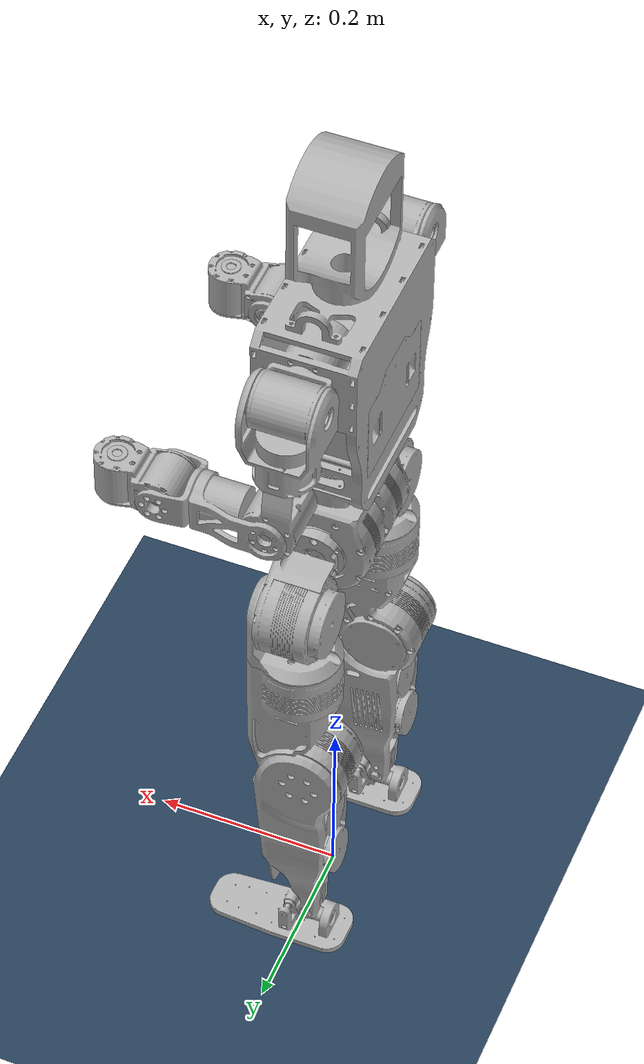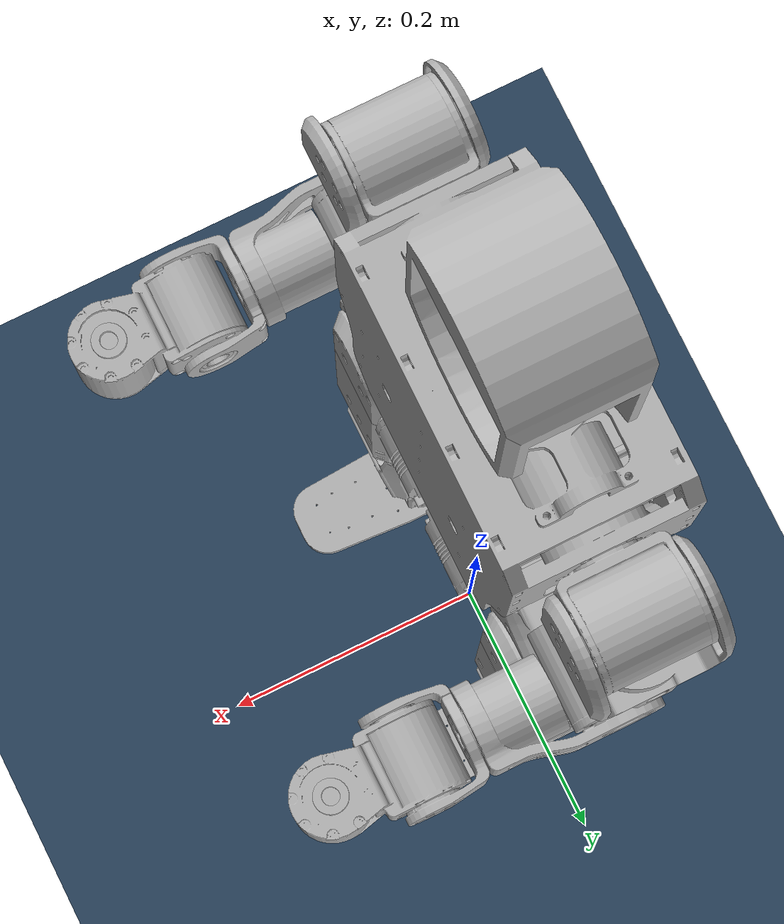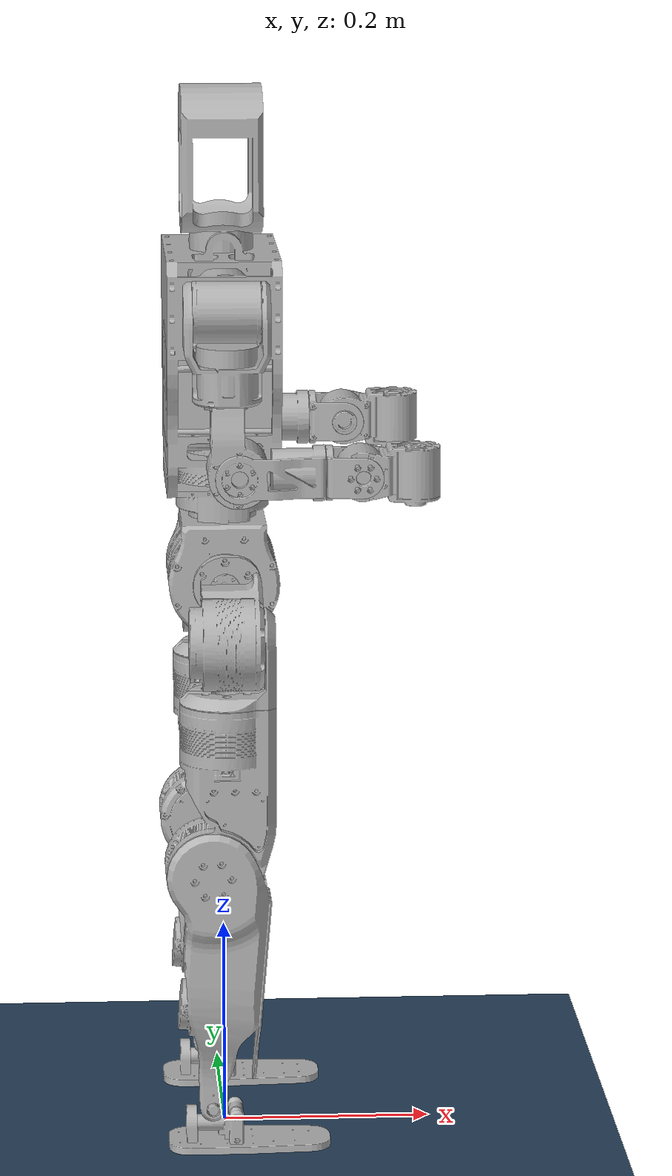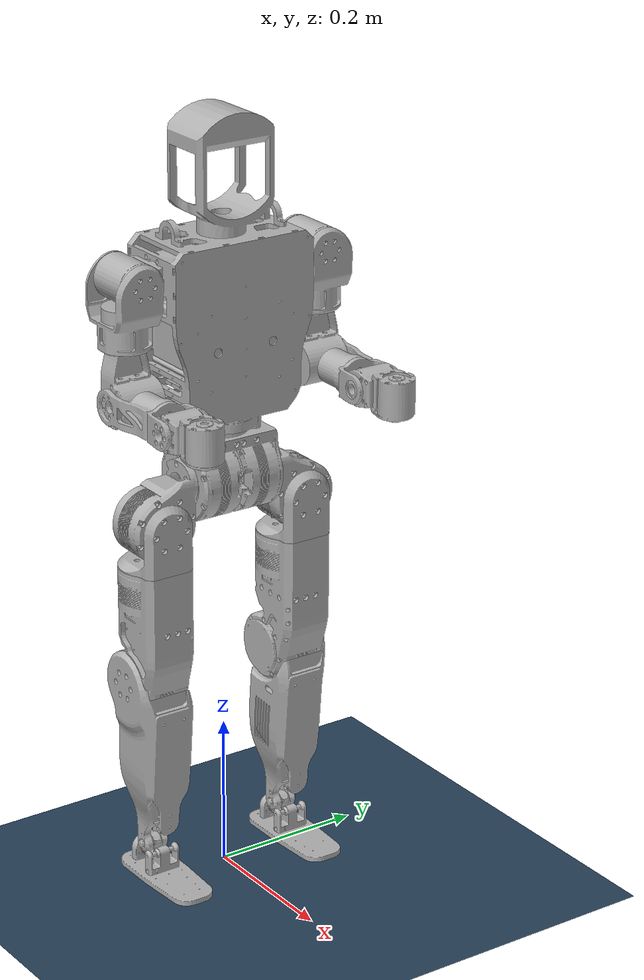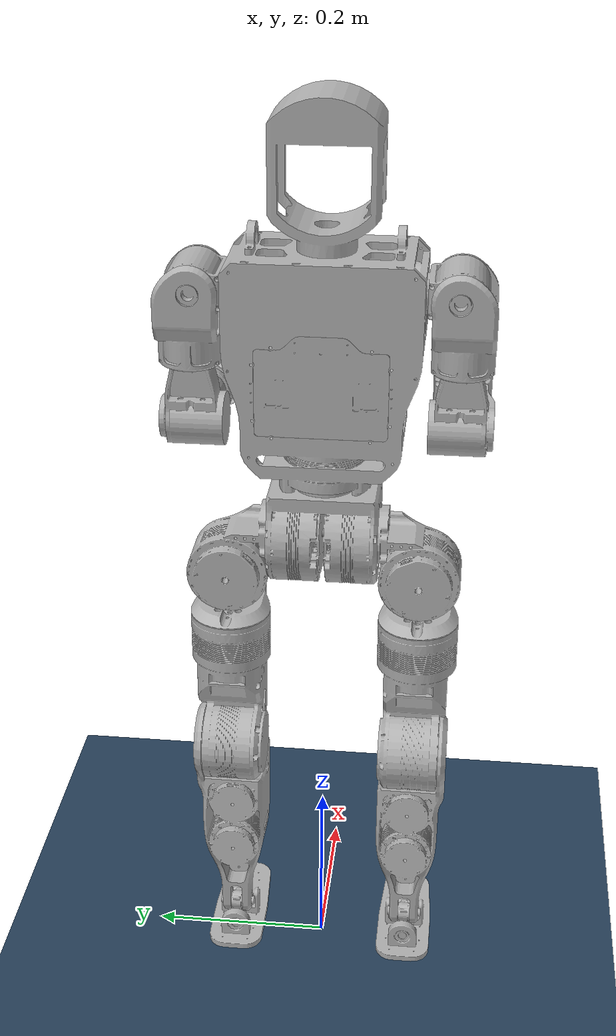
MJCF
<mujoco model="y1_v2">
  <option iterations="50" timestep="0.001" solver="PGS" gravity="0 0 -9.81" />

  <compiler angle="radian" meshdir="../meshes"/>

  <default>
    <joint limited="true" damping="0.01" frictionloss="0.01" />
    <geom condim="4" contype="1" conaffinity="15" friction="0.9 0.9 0.9" solref="0.001 2" />
    <motor ctrllimited="true" />
    <equality solref="0.001 2" />
    <default class="robot">
      <default class="motor">
        <joint />
        <motor />
      </default>
      <default class="visual">
        <geom material="visualgeom" contype="0" conaffinity="0" group="2" />
      </default>
      <default class="collision">
        <geom material="collision_material" condim="4" contype="1" conaffinity="1" priority="1" group="1" solref="0.001 2" friction="1 0.2 0.01" />
        <equality solimp="0.99 0.999 1e-05" solref="0.005 1" />
      </default>
    </default>
    <default class="visualgeom">
      <geom material="visualgeom" condim="1" contype="0" conaffinity="0" />
    </default>
  </default>

  <asset>
    <material name="default_material" rgba="0.7 0.7 0.7 1.0" />
    <material name="collision_material" rgba="1.0 0.28 0.1 0.0" />
    <mesh name="waist_link.STL" file="../meshes/waist_link.STL" />
    <mesh name="base_link.STL" file="../meshes/base_link.STL" />
    <mesh name="left_shoulder_pitch_link.STL" file="../meshes/left_shoulder_pitch_link.STL" />
    <mesh name="left_shoulder_roll_link.STL" file="../meshes/left_shoulder_roll_link.STL" />
    <mesh name="left_shoulder_yaw_link.STL" file="../meshes/left_shoulder_yaw_link.STL" />
    <mesh name="left_elbow_link.STL" file="../meshes/left_elbow_link.STL" />
    <mesh name="left_wrist_roll_link.STL" file="../meshes/left_wrist_roll_link.STL" />
    <mesh name="left_wrist_pitch_link.STL" file="../meshes/left_wrist_pitch_link.STL" />
    <mesh name="left_wrist_yaw_link.STL" file="../meshes/left_wrist_yaw_link.STL" />
    <mesh name="right_shoulder_pitch_link.STL" file="../meshes/right_shoulder_pitch_link.STL" />
    <mesh name="right_shoulder_roll_link.STL" file="../meshes/right_shoulder_roll_link.STL" />
    <mesh name="right_shoulder_yaw_link.STL" file="../meshes/right_shoulder_yaw_link.STL" />
    <mesh name="right_elbow_link.STL" file="../meshes/right_elbow_link.STL" />
    <mesh name="right_wrist_roll_link.STL" file="../meshes/right_wrist_roll_link.STL" />
    <mesh name="right_wrist_pitch_link.STL" file="../meshes/right_wrist_pitch_link.STL" />
    <mesh name="right_wrist_yaw_link.STL" file="../meshes/right_wrist_yaw_link.STL" />
    <mesh name="battery_link.STL" file="../meshes/battery_link.STL" />
    <mesh name="left_hip_pitch_link.STL" file="../meshes/left_hip_pitch_link.STL" />
    <mesh name="left_hip_roll_link.STL" file="../meshes/left_hip_roll_link.STL" />
    <mesh name="left_hip_yaw_link.STL" file="../meshes/left_hip_yaw_link.STL" />
    <mesh name="left_knee_link.STL" file="../meshes/left_knee_link.STL" />
    <mesh name="left_ankle_pitch_link.STL" file="../meshes/left_ankle_pitch_link.STL" />
    <mesh name="left_ankle_roll_link.STL" file="../meshes/left_ankle_roll_link.STL" />
    <mesh name="right_hip_pitch_link.STL" file="../meshes/right_hip_pitch_link.STL" />
    <mesh name="right_hip_roll_link.STL" file="../meshes/right_hip_roll_link.STL" />
    <mesh name="right_hip_yaw_link.STL" file="../meshes/right_hip_yaw_link.STL" />
    <mesh name="right_knee_link.STL" file="../meshes/right_knee_link.STL" />
    <mesh name="right_ankle_pitch_link.STL" file="../meshes/right_ankle_pitch_link.STL" />
    <mesh name="right_ankle_roll_link.STL" file="../meshes/right_ankle_roll_link.STL" />
    <texture name="texplane" type="2d" builtin="checker" rgb1=".0 .0 .0" rgb2=".8 .8 .8" width="100" height="100" />
    <material name="matplane" reflectance="0." texture="texplane" texrepeat="1 1" texuniform="true" />
    <texture type="skybox" builtin="gradient" rgb1="0.3 0.5 0.7" rgb2="0 0 0" width="512"
      height="3072" />
    <texture type="2d" name="groundplane" builtin="checker" mark="edge" rgb1="0.2 0.3 0.4"
      rgb2="0.1 0.2 0.3" markrgb="0.8 0.8 0.8" width="300" height="300" />
    <material name="groundplane" texture="groundplane" texuniform="true" texrepeat="5 5"
      reflectance="0.2" />
  </asset>

  <worldbody>
    <body name="waist_link" pos="0 0 0.55" quat="1 0 0 0">
      <freejoint name="floating_base" />
      <inertial pos="-0.000147532436487912 -1.34754674094883E-05 0.00578680897576875" quat="1.0 0.0 0.0 0.0" mass="2.13374789152577" diaginertia="0.00227109849776872 0.00337000213432435 0.0021254412804257" />
      <geom name="waist_link_collision" pos="0.0 0.0 0.0" quat="0.7073882691671998 0.706825181105366 0.0 0.0" type="cylinder" size="0.0525 0.055" class="collision" />
      <geom name="waist_link_visual" pos="0 0 0" quat="1.0 0.0 0.0 0.0" material="default_material" type="mesh" mesh="waist_link.STL" class="visual" />
      <body name="base_link" pos="0 0 0.0625" quat="1.0 0.0 0.0 0.0">
        <joint name="waist_yaw_joint" type="hinge" ref="0.0" class="motor" range="-2.878 2.878" axis="0 0 1" armature="0.0576489375" />
        <inertial pos="0.000360453175474109 2.49995619218511E-05 0.1569903093123" quat="1.0 0.0 0.0 0.0" mass="3.50395400000576" diaginertia="0.0104050538344693 0.00709048630107415 0.00583430399886682" />
        <geom name="base_link_collision" pos="0 0 0" quat="1.0 0.0 0.0 0.0" type="mesh" mesh="base_link.STL" class="collision" />
        <geom name="base_link_visual" pos="0 0 0" quat="1.0 0.0 0.0 0.0" material="default_material" type="mesh" mesh="base_link.STL" class="visual" />
        <body name="left_shoulder_pitch_link" pos="0 0.102 0.212" quat="1.0 0.0 0.0 0.0">
          <joint name="left_shoulder_pitch_joint" type="hinge" ref="0.0" class="motor" range="-3.14 1.57" axis="0 1 0" armature="0.032" />
          <inertial pos="-0.000922995543298007 0.0294884540422101 8.74957029994849E-07" quat="1.0 0.0 0.0 0.0" mass="0.461570540165194" diaginertia="0.000191912626363045 0.000201984662392108 0.00021022932306212" />
          <geom name="left_shoulder_pitch_link_collision" pos="0 0 0" quat="1.0 0.0 0.0 0.0" type="mesh" mesh="left_shoulder_pitch_link.STL" class="collision" />
          <geom name="left_shoulder_pitch_link_visual" pos="0 0 0" quat="1.0 0.0 0.0 0.0" material="default_material" type="mesh" mesh="left_shoulder_pitch_link.STL" class="visual" />
          <body name="left_shoulder_roll_link" pos="0 0.032 0" quat="1.0 0.0 0.0 0.0">
            <joint name="left_shoulder_roll_joint" type="hinge" ref="0.0" class="motor" range="0 2.355" axis="1 0 0" armature="0.032" />
            <inertial pos="0.000922746083955307 0.0046399049626985 -0.046211238477525" quat="1.0 0.0 0.0 0.0" mass="0.538683833357271" diaginertia="0.00040009771060973 0.00034921985597383 0.000232848033215598" />
            <geom name="left_shoulder_roll_link_collision" pos="0 0 0" quat="1.0 0.0 0.0 0.0" type="mesh" mesh="left_shoulder_roll_link.STL" class="collision" />
            <geom name="left_shoulder_roll_link_visual" pos="0 0 0" quat="1.0 0.0 0.0 0.0" material="default_material" type="mesh" mesh="left_shoulder_roll_link.STL" class="visual" />
            <body name="left_shoulder_yaw_link" pos="0 0.005 -0.0835" quat="1.0 0.0 0.0 0.0">
              <joint name="left_shoulder_yaw_joint" type="hinge" ref="0.0" class="motor" range="-1.57 1.57" axis="0 0 1" armature="0.002" />
              <inertial pos="0.00844192007561278 -0.00327280936403501 -0.0597610559408318" quat="1.0 0.0 0.0 0.0" mass="0.463944694633175" diaginertia="0.000251640278346374 0.000217788337705499 0.00021105221141685" />
              <geom name="left_shoulder_yaw_link_collision" pos="0 0 0" quat="1.0 0.0 0.0 0.0" type="mesh" mesh="left_shoulder_yaw_link.STL" class="collision" />
              <geom name="left_shoulder_yaw_link_visual" pos="0 0 0" quat="1.0 0.0 0.0 0.0" material="default_material" type="mesh" mesh="left_shoulder_yaw_link.STL" class="visual" />
              <body name="left_elbow_link" pos="0.01 0 -0.06645" quat="1.0 0.0 0.0 0.0">
                <joint name="left_elbow_joint" type="hinge" ref="0.0" class="motor" range="-0.698 1.57" axis="0 1 0" armature="0.032" />
                <inertial pos="0.0487627009104387 0.0052922798966468 -2.78693846155198E-05" quat="1.0 0.0 0.0 0.0" mass="0.267745867764127" diaginertia="8.40861670491059e-05 0.000152711182357521 0.000157577861621404" />
                <geom name="left_elbow_link_collision" pos="0 0 0" quat="1.0 0.0 0.0 0.0" type="mesh" mesh="left_elbow_link.STL" class="collision" />
                <geom name="left_elbow_link_visual" pos="0 0 0" quat="1.0 0.0 0.0 0.0" material="default_material" type="mesh" mesh="left_elbow_link.STL" class="visual" />
                <body name="left_wrist_roll_link" pos="0.08 0 0" quat="1.0 0.0 0.0 0.0">
                  <joint name="left_wrist_roll_joint" type="hinge" ref="0.0" class="motor" range="-2.093 2.093" axis="1 0 0" armature="0.0007" />
                  <inertial pos="0.0139790461011629 0.00346199547945228 9.06582385069576E-05" quat="1.0 0.0 0.0 0.0" mass="0.0750846289045826" diaginertia="2.66526996927476e-05 2.80958571677745e-05 3.28816482928371e-05" />
                  <geom name="left_wrist_roll_link_collision" pos="0 0 0" quat="1.0 0.0 0.0 0.0" type="mesh" mesh="left_wrist_roll_link.STL" class="collision" />
                  <geom name="left_wrist_roll_link_visual" pos="0 0 0" quat="1.0 0.0 0.0 0.0" material="default_material" type="mesh" mesh="left_wrist_roll_link.STL" class="visual" />
                  <body name="left_wrist_pitch_link" pos="0.034 0 0" quat="1.0 0.0 0.0 0.0">
                    <joint name="left_wrist_pitch_joint" type="hinge" ref="0.0" class="motor" range="-1.744 1.744" axis="0 1 0" armature="0.0007" />
                    <inertial pos="0.0250000000340997 -0.000363970458714585 -0.000363970291862248" quat="1.0 0.0 0.0 0.0" mass="0.46595579339516" diaginertia="0.000134888904888197 0.000134363130912949 0.000134363137199576" />
                    <geom name="left_wrist_pitch_link_collision" pos="0 0 0" quat="1.0 0.0 0.0 0.0" type="mesh" mesh="left_wrist_pitch_link.STL" class="collision" />
                    <geom name="left_wrist_pitch_link_visual" pos="0 0 0" quat="1.0 0.0 0.0 0.0" material="default_material" type="mesh" mesh="left_wrist_pitch_link.STL" class="visual" />
                    <body name="left_wrist_yaw_link" pos="0.05 0 0" quat="1.0 0.0 0.0 0.0">
                      <joint name="left_wrist_yaw_joint" type="hinge" ref="0.0" class="motor" range="-1.57 1.57" axis="0 0 1" armature="0.0007" />
                      <inertial pos="2.38697950294409E-15 -4.71844785465692E-16 0.0239999999999999" quat="1.0 0.0 0.0 0.0" mass="0.00124944281425919" diaginertia="3.93240601951414e-08 3.93240601951414e-08 7.78372209768383e-08" />
                      <geom name="left_wrist_yaw_link_collision" pos="0 0 0" quat="1.0 0.0 0.0 0.0" type="mesh" mesh="left_wrist_yaw_link.STL" class="collision" />
                      <geom name="left_wrist_yaw_link_visual" pos="0 0 0" quat="1.0 0.0 0.0 0.0" material="default_material" type="mesh" mesh="left_wrist_yaw_link.STL" class="visual" />
                    </body>
                  </body>
                </body>
              </body>
            </body>
          </body>
        </body>
        <body name="right_shoulder_pitch_link" pos="0 -0.102 0.212" quat="1.0 0.0 0.0 0.0">
          <joint name="right_shoulder_pitch_joint" type="hinge" ref="0.0" class="motor" range="-3.14 1.57" axis="0 1 0" armature="0.032" />
          <inertial pos="-0.000922954498861265 -0.0294883178790314 8.39729638740794E-07" quat="1.0 0.0 0.0 0.0" mass="0.461573829328242" diaginertia="0.00019191259746241 0.000201985280007015 0.00021022977512661" />
          <geom name="right_shoulder_pitch_link_collision" pos="0 0 0" quat="1.0 0.0 0.0 0.0" type="mesh" mesh="right_shoulder_pitch_link.STL" class="collision" />
          <geom name="right_shoulder_pitch_link_visual" pos="0 0 0" quat="1.0 0.0 0.0 0.0" material="default_material" type="mesh" mesh="right_shoulder_pitch_link.STL" class="visual" />
          <body name="right_shoulder_roll_link" pos="0 -0.032 0" quat="1.0 0.0 0.0 0.0">
            <joint name="right_shoulder_roll_joint" type="hinge" ref="0.0" class="motor" range="-2.355 0" axis="1 0 0" armature="0.032" />
            <inertial pos="0.000922748204167063 -0.00463991300654823 -0.0462112330998131" quat="1.0 0.0 0.0 0.0" mass="0.53868378504537" diaginertia="0.000400097643660525 0.000349219863073467 0.000232847955221294" />
            <geom name="right_shoulder_roll_link_collision" pos="0 0 0" quat="1.0 0.0 0.0 0.0" type="mesh" mesh="right_shoulder_roll_link.STL" class="collision" />
            <geom name="right_shoulder_roll_link_visual" pos="0 0 0" quat="1.0 0.0 0.0 0.0" material="default_material" type="mesh" mesh="right_shoulder_roll_link.STL" class="visual" />
            <body name="right_shoulder_yaw_link" pos="0 -0.005 -0.0835" quat="1.0 0.0 0.0 0.0">
              <joint name="right_shoulder_yaw_joint" type="hinge" ref="0.0" class="motor" range="-1.57 1.57" axis="0 0 1" armature="0.002" />
              <inertial pos="0.00844192007561278 0.00327280936403501 -0.0597610559408318" quat="1.0 0.0 0.0 0.0" mass="0.463944694633175" diaginertia="0.000251640278346374 0.000217788337705499 0.00021105221141685" />
              <geom name="right_shoulder_yaw_link_collision" pos="0 0 0" quat="1.0 0.0 0.0 0.0" type="mesh" mesh="right_shoulder_yaw_link.STL" class="collision" />
              <geom name="right_shoulder_yaw_link_visual" pos="0 0 0" quat="1.0 0.0 0.0 0.0" material="default_material" type="mesh" mesh="right_shoulder_yaw_link.STL" class="visual" />
              <body name="right_elbow_link" pos="0.01 0 -0.06645" quat="1.0 0.0 0.0 0.0">
                <joint name="right_elbow_joint" type="hinge" ref="0.0" class="motor" range="-0.698 1.57" axis="0 1 0" armature="0.032" />
                <inertial pos="0.0487628336690142 -0.00529213381688548 -2.78608847561201E-05" quat="1.0 0.0 0.0 0.0" mass="0.2677433911773" diaginertia="8.40859680340032e-05 0.000152710768334788 0.000157577676329459" />
                <geom name="right_elbow_link_collision" pos="0 0 0" quat="1.0 0.0 0.0 0.0" type="mesh" mesh="right_elbow_link.STL" class="collision" />
                <geom name="right_elbow_link_visual" pos="0 0 0" quat="1.0 0.0 0.0 0.0" material="default_material" type="mesh" mesh="right_elbow_link.STL" class="visual" />
                <body name="right_wrist_roll_link" pos="0.08 0 0" quat="1.0 0.0 0.0 0.0">
                  <joint name="right_wrist_roll_joint" type="hinge" ref="0.0" class="motor" range="-2.093 2.093" axis="1 0 0" armature="0.0007" />
                  <inertial pos="0.0139792420369952 -0.00346207324364742 9.06629264122161E-05" quat="1.0 0.0 0.0 0.0" mass="0.0750855863374904" diaginertia="2.66530273664232e-05 2.80962193678819e-05 3.28819646643291e-05" />
                  <geom name="right_wrist_roll_link_collision" pos="0 0 0" quat="1.0 0.0 0.0 0.0" type="mesh" mesh="right_wrist_roll_link.STL" class="collision" />
                  <geom name="right_wrist_roll_link_visual" pos="0 0 0" quat="1.0 0.0 0.0 0.0" material="default_material" type="mesh" mesh="right_wrist_roll_link.STL" class="visual" />
                  <body name="right_wrist_pitch_link" pos="0.034 0 0" quat="1.0 0.0 0.0 0.0">
                    <joint name="right_wrist_pitch_joint" type="hinge" ref="0.0" class="motor" range="-1.744 1.744" axis="0 1 0" armature="0.0007" />
                    <inertial pos="0.0250000000340997 0.000363970458714585 -0.000363970291862248" quat="1.0 0.0 0.0 0.0" mass="0.46595579339516" diaginertia="0.000134888904888197 0.000134363130912949 0.000134363137199576" />
                    <geom name="right_wrist_pitch_link_collision" pos="0 0 0" quat="1.0 0.0 0.0 0.0" type="mesh" mesh="right_wrist_pitch_link.STL" class="collision" />
                    <geom name="right_wrist_pitch_link_visual" pos="0 0 0" quat="1.0 0.0 0.0 0.0" material="default_material" type="mesh" mesh="right_wrist_pitch_link.STL" class="visual" />
                    <body name="right_wrist_yaw_link" pos="0.05 0 0" quat="1.0 0.0 0.0 0.0">
                      <joint name="right_wrist_yaw_joint" type="hinge" ref="0.0" class="motor" range="-1.57 1.57" axis="0 0 1" armature="0.0007" />
                      <inertial pos="8.04911692853238E-16 -5.55111512312578E-17 0.024000000000001" quat="1.0 0.0 0.0 0.0" mass="0.0012494428142592" diaginertia="3.93240601951416e-08 3.93240601951416e-08 7.78372209768387e-08" />
                      <geom name="right_wrist_yaw_link_collision" pos="0 0 0" quat="1.0 0.0 0.0 0.0" type="mesh" mesh="right_wrist_yaw_link.STL" class="collision" />
                      <geom name="right_wrist_yaw_link_visual" pos="0 0 0" quat="1.0 0.0 0.0 0.0" material="default_material" type="mesh" mesh="right_wrist_yaw_link.STL" class="visual" />
                    </body>
                  </body>
                </body>
              </body>
            </body>
          </body>
        </body>
        <body name="battery_link" pos="-0.0005 0 0.1223" quat="1.0 0.0 0.0 0.0">
          <inertial pos="0.00232952920747599 -7.33961772816665E-06 -0.00359892927936641" quat="1.0 0.0 0.0 0.0" mass="1.91171786803463" diaginertia="0.00267866459373055 0.00193653118125467 0.00261630777559634" />
          <geom name="battery_link_collision" pos="0 0 0" quat="1.0 0.0 0.0 0.0" type="mesh" mesh="battery_link.STL" class="collision" />
          <geom name="battery_link_visual" pos="0 0 0" quat="1.0 0.0 0.0 0.0" material="default_material" type="mesh" mesh="battery_link.STL" class="visual" />
        </body>
      </body>
      <body name="left_hip_pitch_link" pos="0 0.0555 0" quat="1.0 0.0 0.0 0.0">
        <joint name="left_hip_pitch_joint" type="hinge" ref="0.0" class="motor" range="-2.616 2.18" axis="0 1 0" armature="0.031752" />
        <inertial pos="0.0034991 0.044403 -0.04033" quat="1.0 0.0 0.0 0.0" mass="1.0129" diaginertia="0.0010184 0.00078937 0.00075784" />
        <geom name="left_hip_pitch_link_collision" pos="0 0 0" quat="1.0 0.0 0.0 0.0" type="mesh" mesh="left_hip_pitch_link.STL" class="collision" />
        <geom name="left_hip_pitch_link_visual" pos="0 0 0" quat="1.0 0.0 0.0 0.0" material="default_material" type="mesh" mesh="left_hip_pitch_link.STL" class="visual" />
        <body name="left_hip_roll_link" pos="-0.001 0.0485 -0.046" quat="1.0 0.0 0.0 0.0">
          <joint name="left_hip_roll_joint" type="hinge" ref="0.0" class="motor" range="-0.523 1.919" axis="1 0 0" armature="0.0576489375" />
          <inertial pos="0.0209947601036385 -3.7434082858806E-05 -0.0313980566705861" quat="1.0 0.0 0.0 0.0" mass="0.265862453364916" diaginertia="0.0003023093282274 0.000338678381723817 0.000274737094369601" />
          <geom name="left_hip_roll_link_collision" pos="0 0 0" quat="1.0 0.0 0.0 0.0" type="mesh" mesh="left_hip_roll_link.STL" class="collision" />
          <geom name="left_hip_roll_link_visual" pos="0 0 0" quat="1.0 0.0 0.0 0.0" material="default_material" type="mesh" mesh="left_hip_roll_link.STL" class="visual" />
          <body name="left_hip_yaw_link" pos="0 0 -0.0555" quat="1.0 0.0 0.0 0.0">
            <joint name="left_hip_yaw_joint" type="hinge" ref="0.0" class="motor" range="-1.396 1.396" axis="0 0 1" armature="0.0576489375" />
            <inertial pos="-0.00255976432043927 -0.00069928819112558 -0.0952274428009784" quat="1.0 0.0 0.0 0.0" mass="2.19591107188949" diaginertia="0.00183040584160753 0.00224276082257345 0.00199394553319269" />
            <geom name="left_hip_yaw_link_collision" pos="0 0 0" quat="1.0 0.0 0.0 0.0" type="mesh" mesh="left_hip_yaw_link.STL" class="collision" />
            <geom name="left_hip_yaw_link_visual" pos="0 0 0" quat="1.0 0.0 0.0 0.0" material="default_material" type="mesh" mesh="left_hip_yaw_link.STL" class="visual" />
            <body name="left_knee_link" pos="-0.014 -0.003 -0.164" quat="1.0 0.0 0.0 0.0">
              <joint name="left_knee_joint" type="hinge" ref="0.0" class="motor" range="0 2.53" axis="0 1 0" armature="0.065" />
              <inertial pos="0.0156671098554938 0.00705093945022973 -0.0963810954454972" quat="1.0 0.0 0.0 0.0" mass="0.635365999334845" diaginertia="0.00328775079621155 0.00312027230349765 0.000655917852138933" />
              <geom name="left_knee_link_collision" pos="0 0 0" quat="1.0 0.0 0.0 0.0" type="mesh" mesh="left_knee_link.STL" class="collision" />
              <geom name="left_knee_link_visual" pos="0 0 0" quat="1.0 0.0 0.0 0.0" material="default_material" type="mesh" mesh="left_knee_link.STL" class="visual" />
              <body name="left_ankle_pitch_link" pos="0 0 -0.235" quat="1.0 0.0 0.0 0.0">
                <joint name="left_ankle_pitch_joint" type="hinge" ref="0.0" class="motor" range="-0.924 0.471" axis="0 1 0" armature="0.023328" />
                <inertial pos="-0.00158604980469599 -3.69598796012838E-11 -0.00863787369669178" quat="1.0 0.0 0.0 0.0" mass="0.034623437769479" diaginertia="3.73607254824144e-06 4.42983805720538e-06 3.49642074452883e-06" />
                <geom name="left_ankle_pitch_link_visual" pos="0 0 0" quat="1.0 0.0 0.0 0.0" material="default_material" type="mesh" mesh="left_ankle_pitch_link.STL" class="visual" />
                <body name="left_ankle_roll_link" pos="0 0 -0.018" quat="1.0 0.0 0.0 0.0">
                  <joint name="left_ankle_roll_joint" type="hinge" ref="0.0" class="motor" range="-0.296 0.296" axis="1 0 0" armature="0.023328" />
                  <inertial pos="0.023979 -5.3469E-10 -0.013197" quat="1.0 0.0 0.0 0.0" mass="0.23554" diaginertia="5.9926e-05 0.00031658 0.00036382" />
                  <geom name="left_ankle_roll_link_collision_0" pos="0.035 -0.027 -0.0185" quat="0.7069909345159154 0.01272725813955122 -0.7069935314433936 0.01272721138980753" type="cylinder" size="0.0035 0.06" class="collision" />
                  <geom name="left_ankle_roll_link_collision_1" pos="0.035 -0.01 -0.0185" quat="0.7071054825112363 0.0 -0.7071080798594735 0.0" type="cylinder" size="0.0035 0.0775" class="collision" />
                  <geom name="left_ankle_roll_link_collision_2" pos="0.035 0 -0.0185" quat="0.7071054825112363 0.0 -0.7071080798594735 0.0" type="cylinder" size="0.0035 0.0775" class="collision" />
                  <geom name="left_ankle_roll_link_collision_3" pos="0.035 0.01 -0.0185" quat="0.7071054825112363 0.0 -0.7071080798594735 0.0" type="cylinder" size="0.0035 0.0775" class="collision" />
                  <geom name="left_ankle_roll_link_collision_4" pos="0.035 0.027 -0.0185" quat="0.7069909345159154 -0.01272725813955122 -0.7069935314433936 -0.01272721138980753" type="cylinder" size="0.0035 0.06" class="collision" />
                  <geom name="left_ankle_roll_link_visual" pos="0 0 0" quat="1.0 0.0 0.0 0.0" material="default_material" type="mesh" mesh="left_ankle_roll_link.STL" class="visual" />
                </body>
              </body>
            </body>
          </body>
        </body>
      </body>
      <body name="right_hip_pitch_link" pos="0 -0.0555 0" quat="1.0 0.0 0.0 0.0">
        <joint name="right_hip_pitch_joint" type="hinge" ref="0.0" class="motor" range="-2.616 2.18" axis="0 1 0" armature="0.031752" />
        <inertial pos="0.0034991 -0.044403 -0.04033" quat="1.0 0.0 0.0 0.0" mass="1.0129" diaginertia="0.0010184 0.00078941 0.0007578" />
        <geom name="right_hip_pitch_link_collision" pos="0 0 0" quat="1.0 0.0 0.0 0.0" type="mesh" mesh="right_hip_pitch_link.STL" class="collision" />
        <geom name="right_hip_pitch_link_visual" pos="0 0 0" quat="1.0 0.0 0.0 0.0" material="default_material" type="mesh" mesh="right_hip_pitch_link.STL" class="visual" />
        <body name="right_hip_roll_link" pos="-0.001 -0.0485 -0.046" quat="1.0 0.0 0.0 0.0">
          <joint name="right_hip_roll_joint" type="hinge" ref="0.0" class="motor" range="-1.919 0.523" axis="1 0 0" armature="0.0576489375" />
          <inertial pos="0.0209950392249998 3.74359140582481E-05 -0.0313979960473901" quat="1.0 0.0 0.0 0.0" mass="0.265861773531884" diaginertia="0.000302309047402544 0.000338675231841877 0.000274734440903424" />
          <geom name="right_hip_roll_link_collision" pos="0 0 0" quat="1.0 0.0 0.0 0.0" type="mesh" mesh="right_hip_roll_link.STL" class="collision" />
          <geom name="right_hip_roll_link_visual" pos="0 0 0" quat="1.0 0.0 0.0 0.0" material="default_material" type="mesh" mesh="right_hip_roll_link.STL" class="visual" />
          <body name="right_hip_yaw_link" pos="0 0 -0.0555" quat="1.0 0.0 0.0 0.0">
            <joint name="right_hip_yaw_joint" type="hinge" ref="0.0" class="motor" range="-1.396 1.396" axis="0 0 1" armature="0.0576489375" />
            <inertial pos="-0.00255967925148478 0.000699287247046043 -0.0952275449641876" quat="1.0 0.0 0.0 0.0" mass="2.1959090987129" diaginertia="0.00183072962371547 0.00224275993632925 0.00199361986999484" />
            <geom name="right_hip_yaw_link_collision" pos="0 0 0" quat="1.0 0.0 0.0 0.0" type="mesh" mesh="right_hip_yaw_link.STL" class="collision" />
            <geom name="right_hip_yaw_link_visual" pos="0 0 0" quat="1.0 0.0 0.0 0.0" material="default_material" type="mesh" mesh="right_hip_yaw_link.STL" class="visual" />
            <body name="right_knee_link" pos="-0.014 0.003 -0.164" quat="1.0 0.0 0.0 0.0">
              <joint name="right_knee_joint" type="hinge" ref="0.0" class="motor" range="0 2.53" axis="0 1 0" armature="0.065" />
              <inertial pos="0.0156670236001357 -0.0070509465328456 -0.0963808952049117" quat="1.0 0.0 0.0 0.0" mass="0.63536976411691" diaginertia="0.00328775444013757 0.00312027391316761 0.000655917255913811" />
              <geom name="right_knee_link_collision" pos="0 0 0" quat="1.0 0.0 0.0 0.0" type="mesh" mesh="right_knee_link.STL" class="collision" />
              <geom name="right_knee_link_visual" pos="0 0 0" quat="1.0 0.0 0.0 0.0" material="default_material" type="mesh" mesh="right_knee_link.STL" class="visual" />
              <body name="right_ankle_pitch_link" pos="0 0 -0.235" quat="1.0 0.0 0.0 0.0">
                <joint name="right_ankle_pitch_joint" type="hinge" ref="0.0" class="motor" range="-0.924 0.471" axis="0 1 0" armature="0.023328" />
                <inertial pos="-0.00158604980469635 -3.69599073568594E-11 -0.00863787369669122" quat="1.0 0.0 0.0 0.0" mass="0.0346234377694789" diaginertia="3.73607254824143e-06 4.42983805720538e-06 3.49642074452881e-06" />
                <geom name="right_ankle_pitch_link_visual" pos="0 0 0" quat="1.0 0.0 0.0 0.0" material="default_material" type="mesh" mesh="right_ankle_pitch_link.STL" class="visual" />
                <body name="right_ankle_roll_link" pos="0 0 -0.018" quat="1.0 0.0 0.0 0.0">
                  <joint name="right_ankle_roll_joint" type="hinge" ref="0.0" class="motor" range="-0.296 0.296" axis="1 0 0" armature="0.023328" />
                  <inertial pos="0.0239787339763955 -5.34694358234056E-10 -0.0131970568803313" quat="1.0 0.0 0.0 0.0" mass="0.235542502103757" diaginertia="5.99263663331631e-05 0.000316582599408937 0.000363821149267926" />
                  <geom name="right_ankle_roll_link_collision_0" pos="0.035 -0.027 -0.0185" quat="0.7069909345159154 0.01272725813955122 -0.7069935314433936 0.01272721138980753" type="cylinder" size="0.0035 0.06" class="collision" />
                  <geom name="right_ankle_roll_link_collision_1" pos="0.035 -0.01 -0.0185" quat="0.7071054825112363 0.0 -0.7071080798594735 0.0" type="cylinder" size="0.0035 0.0775" class="collision" />
                  <geom name="right_ankle_roll_link_collision_2" pos="0.035 0 -0.0185" quat="0.7071054825112363 0.0 -0.7071080798594735 0.0" type="cylinder" size="0.0035 0.0775" class="collision" />
                  <geom name="right_ankle_roll_link_collision_3" pos="0.035 0.01 -0.0185" quat="0.7071054825112363 0.0 -0.7071080798594735 0.0" type="cylinder" size="0.0035 0.0775" class="collision" />
                  <geom name="right_ankle_roll_link_collision_4" pos="0.035 0.027 -0.0185" quat="0.7069909345159154 -0.01272725813955122 -0.7069935314433936 -0.01272721138980753" type="cylinder" size="0.0035 0.06" class="collision" />
                  <geom name="right_ankle_roll_link_visual" pos="0 0 0" quat="1.0 0.0 0.0 0.0" material="default_material" type="mesh" mesh="right_ankle_roll_link.STL" class="visual" />
                </body>
              </body>
            </body>
          </body>
        </body>
      </body>
      <site name="world_site" pos="0 0 0" quat="1 0 0 0" />
      <camera name="front_camera" mode="track" fovy="90.0" quat="4.329780281177467e-17 4.329780281177466e-17 0.7071067811865475 0.7071067811865476" pos="0.0 2.0 0.5" />
      <camera name="side_camera" mode="track" fovy="90.0" quat="-0.5 -0.4999999999999999 0.5 0.5000000000000001" pos="-2.0 0.0 0.5" />
    </body>
  </worldbody>

  <actuator>
    <motor name="waist_yaw_joint_ctrl" joint="waist_yaw_joint" class="motor" ctrlrange="-70 70" />
    <motor name="left_shoulder_pitch_joint_ctrl" joint="left_shoulder_pitch_joint" class="motor" ctrlrange="-27 27" />
    <motor name="left_shoulder_roll_joint_ctrl" joint="left_shoulder_roll_joint" class="motor" ctrlrange="-27 27" />
    <motor name="left_shoulder_yaw_joint_ctrl" joint="left_shoulder_yaw_joint" class="motor" ctrlrange="-12.5 12.5" />
    <motor name="left_elbow_joint_ctrl" joint="left_elbow_joint" class="motor" ctrlrange="-27 27" />
    <motor name="left_wrist_roll_joint_ctrl" joint="left_wrist_roll_joint" class="motor" ctrlrange="-5.5 5.5" />
    <motor name="left_wrist_pitch_joint_ctrl" joint="left_wrist_pitch_joint" class="motor" ctrlrange="-5.5 5.5" />
    <motor name="left_wrist_yaw_joint_ctrl" joint="left_wrist_yaw_joint" class="motor" ctrlrange="-5.5 5.5" />
    <motor name="right_shoulder_pitch_joint_ctrl" joint="right_shoulder_pitch_joint" class="motor" ctrlrange="-27 27" />
    <motor name="right_shoulder_roll_joint_ctrl" joint="right_shoulder_roll_joint" class="motor" ctrlrange="-27 27" />
    <motor name="right_shoulder_yaw_joint_ctrl" joint="right_shoulder_yaw_joint" class="motor" ctrlrange="-12.5 12.5" />
    <motor name="right_elbow_joint_ctrl" joint="right_elbow_joint" class="motor" ctrlrange="-27 27" />
    <motor name="right_wrist_roll_joint_ctrl" joint="right_wrist_roll_joint" class="motor" ctrlrange="-5.5 5.5" />
    <motor name="right_wrist_pitch_joint_ctrl" joint="right_wrist_pitch_joint" class="motor" ctrlrange="-5.5 5.5" />
    <motor name="right_wrist_yaw_joint_ctrl" joint="right_wrist_yaw_joint" class="motor" ctrlrange="-5.5 5.5" />
    <motor name="left_hip_pitch_joint_ctrl" joint="left_hip_pitch_joint" class="motor" ctrlrange="-90 90" />
    <motor name="left_hip_roll_joint_ctrl" joint="left_hip_roll_joint" class="motor" ctrlrange="-70 70" />
    <motor name="left_hip_yaw_joint_ctrl" joint="left_hip_yaw_joint" class="motor" ctrlrange="-70 70" />
    <motor name="left_knee_joint_ctrl" joint="left_knee_joint" class="motor" ctrlrange="-120 120" />
    <motor name="left_ankle_pitch_joint_ctrl" joint="left_ankle_pitch_joint" class="motor" ctrlrange="-60 60" />
    <motor name="left_ankle_roll_joint_ctrl" joint="left_ankle_roll_joint" class="motor" ctrlrange="-50 50" />
    <motor name="right_hip_pitch_joint_ctrl" joint="right_hip_pitch_joint" class="motor" ctrlrange="-90 90" />
    <motor name="right_hip_roll_joint_ctrl" joint="right_hip_roll_joint" class="motor" ctrlrange="-70 70" />
    <motor name="right_hip_yaw_joint_ctrl" joint="right_hip_yaw_joint" class="motor" ctrlrange="-70 70" />
    <motor name="right_knee_joint_ctrl" joint="right_knee_joint" class="motor" ctrlrange="-120 120" />
    <motor name="right_ankle_pitch_joint_ctrl" joint="right_ankle_pitch_joint" class="motor" ctrlrange="-60 60" />
    <motor name="right_ankle_roll_joint_ctrl" joint="right_ankle_roll_joint" class="motor" ctrlrange="-50 50" />
  </actuator>

  <contact>
    <exclude body1="waist_link" body2="base_link" />
    <exclude body1="base_link" body2="left_shoulder_pitch_link" />
    <exclude body1="left_shoulder_pitch_link" body2="left_shoulder_roll_link" />
    <exclude body1="left_shoulder_roll_link" body2="left_shoulder_yaw_link" />
    <exclude body1="left_shoulder_yaw_link" body2="left_elbow_link" />
    <exclude body1="left_elbow_link" body2="left_wrist_roll_link" />
    <exclude body1="left_wrist_roll_link" body2="left_wrist_pitch_link" />
    <exclude body1="left_wrist_pitch_link" body2="left_wrist_yaw_link" />
    <exclude body1="base_link" body2="right_shoulder_pitch_link" />
    <exclude body1="right_shoulder_pitch_link" body2="right_shoulder_roll_link" />
    <exclude body1="right_shoulder_roll_link" body2="right_shoulder_yaw_link" />
    <exclude body1="right_shoulder_yaw_link" body2="right_elbow_link" />
    <exclude body1="right_elbow_link" body2="right_wrist_roll_link" />
    <exclude body1="right_wrist_roll_link" body2="right_wrist_pitch_link" />
    <exclude body1="right_wrist_pitch_link" body2="right_wrist_yaw_link" />
    <exclude body1="base_link" body2="battery_link" />
    <exclude body1="waist_link" body2="left_hip_pitch_link" />
    <exclude body1="left_hip_pitch_link" body2="left_hip_roll_link" />
    <exclude body1="left_hip_roll_link" body2="left_hip_yaw_link" />
    <exclude body1="left_hip_yaw_link" body2="left_knee_link" />
    <exclude body1="waist_link" body2="right_hip_pitch_link" />
    <exclude body1="right_hip_pitch_link" body2="right_hip_roll_link" />
    <exclude body1="right_hip_roll_link" body2="right_hip_yaw_link" />
    <exclude body1="right_hip_yaw_link" body2="right_knee_link" />
  </contact>

  <statistic center="1.0 0.7 1.0" extent="0.8"/>
  <visual>
    <headlight diffuse="0.6 0.6 0.6" ambient="0.3 0.3 0.3" specular="0 0 0" />
    <rgba haze="0.15 0.25 0.35 1" />
    <global azimuth="-130" elevation="-20" />
  </visual>
  <worldbody>
    <light pos="0 0 1.5" dir="0 0 -1" directional="true" />
    <geom name="floor" size="0 0 0.05" type="plane" material="groundplane" />
  </worldbody>
</mujoco>
